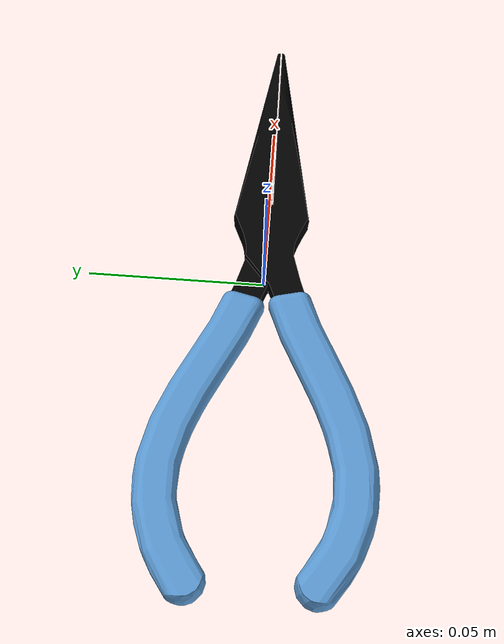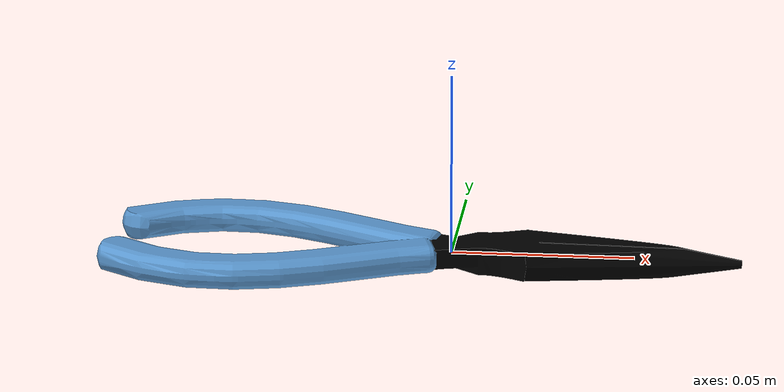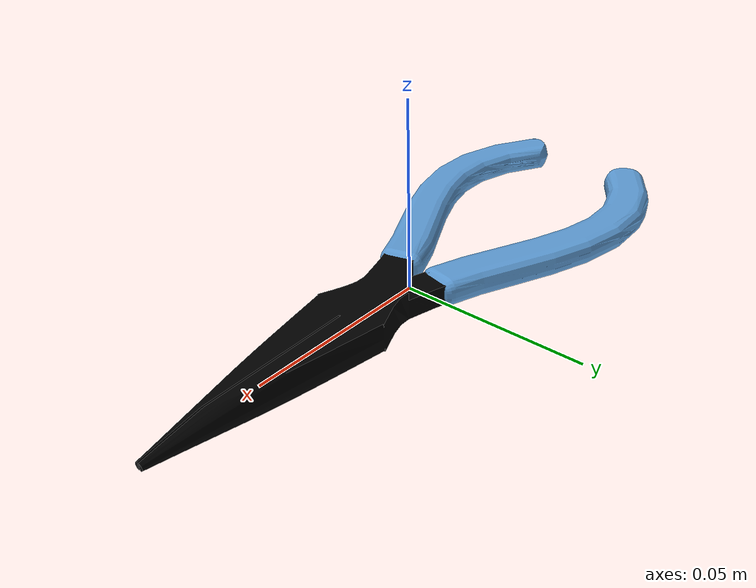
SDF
<?xml version='1.0'?>
<sdf version='1.6'>
  <model name='jsk_plier'>
    <link name='link_0'>
      <inertial>
        <mass>0.5</mass>
        <pose> -0.02 0 0 0 0 0</pose>
        <inertia>
          <ixx>1.0e-4</ixx>
          <iyy>4.0e-3</iyy>
          <izz>4.0e-3</izz>
          <ixy>0</ixy>
          <ixz>0</ixz>
          <iyz>0</iyz>
        </inertia>
      </inertial>
      <visual name='visual'>
        <pose frame=''>0 0.003 -0.004  1.57079632679490 -0 -1.521 </pose>
        <geometry>
          <mesh>
            <uri>model://jsk_plier/meshes/Pliers-2.dae</uri>
            <scale>0.01 0.01 0.01</scale>
          </mesh>
        </geometry>
      </visual>

      <collision name='collision'>
        <laser_retro>0</laser_retro>
        <max_contacts>10</max_contacts>
        <pose frame=''>0.027 0 0 0 -0 0</pose>
        <geometry>
          <box>
            <size> 0.1 0.02 0.01</size>
          </box>
        </geometry>
      </collision>
      <collision name='collision'>
        <laser_retro>0</laser_retro>
        <max_contacts>10</max_contacts>
        <pose frame=''>-0.055 0 0 0 -0 0</pose>
        <geometry>
          <box>
            <size> 0.05 0.06 0.01</size>
          </box>
        </geometry>
      </collision>
      <collision name='collision'>
        <laser_retro>0</laser_retro>
        <max_contacts>10</max_contacts>
        <pose frame=''>-0.025 0 0 0 -0 0</pose>
        <geometry>
          <box>
            <size> 0.03 0.04 0.01</size>
          </box>
        </geometry>
      </collision>
    </link>
  </model>
</sdf>
